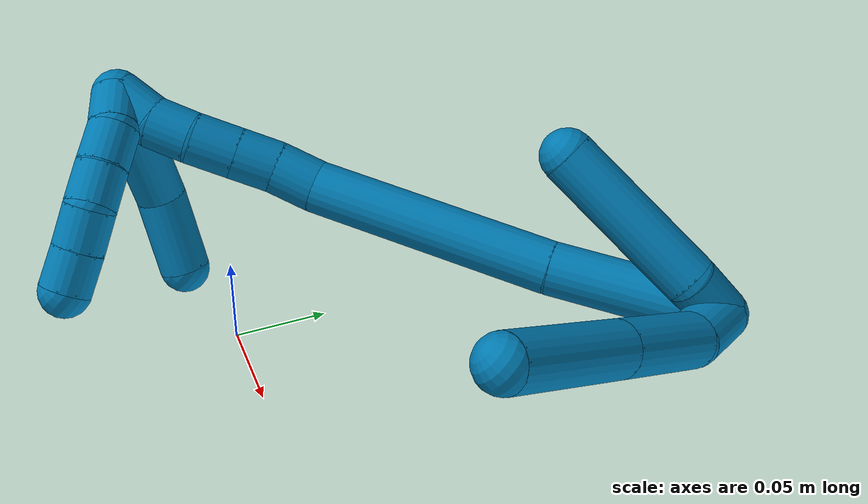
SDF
<sdf version="1.7">
 <world name="default">
  <model name="9">
   <static>0</static>
   <link name="9">
    <collision name="collision-cylinder-e_1_2_8">
     <pose>0.006018 -0.011734 0.006479 1.0663 0.422012 0.251483</pose>
     <geometry><cylinder><radius>0.0125</radius><length>0.029387</length></cylinder></geometry>
     <surface>
      <friction><ode><mu>1.16</mu><mu2>1.16</mu2><slip1>0</slip1><slip2>0</slip2></ode></friction>
      <contact><ode><kp>1e+06</kp><kd>1</kd><max_vel>0</max_vel><min_depth>0.001</min_depth></ode></contact>
     </surface>
    </collision>
    <visual name="visual-cylinder-e_1_2_8">
     <pose>0.006018 -0.011734 0.006479 1.0663 0.422012 0.251483</pose>
     <geometry><cylinder><radius>0.0125</radius><length>0.029387</length></cylinder></geometry>
     <material><ambient>0 0.490196 0.709804 1</ambient></material>
    </visual>
    <collision name="collision-cylinder-e_2_8_9">
     <pose>0.020762 -0.039354 0.031682 0.703551 0.341442 0.126387</pose>
     <geometry><cylinder><radius>0.0125</radius><length>0.052118</length></cylinder></geometry>
     <surface>
      <friction><ode><mu>1.16</mu><mu2>1.16</mu2><slip1>0</slip1><slip2>0</slip2></ode></friction>
      <contact><ode><kp>1e+06</kp><kd>1</kd><max_vel>0</max_vel><min_depth>0.001</min_depth></ode></contact>
     </surface>
    </collision>
    <visual name="visual-cylinder-e_2_8_9">
     <pose>0.020762 -0.039354 0.031682 0.703551 0.341442 0.126387</pose>
     <geometry><cylinder><radius>0.0125</radius><length>0.052118</length></cylinder></geometry>
     <material><ambient>0 0.490196 0.709804 1</ambient></material>
    </visual>
    <collision name="collision-cylinder-e_3_9_6">
     <pose>0.040948 -0.076092 0.075038 0.702528 0.341205 0.126098</pose>
     <geometry><cylinder><radius>0.0125</radius><length>0.068496</length></cylinder></geometry>
     <surface>
      <friction><ode><mu>1.16</mu><mu2>1.16</mu2><slip1>0</slip1><slip2>0</slip2></ode></friction>
      <contact><ode><kp>1e+06</kp><kd>1</kd><max_vel>0</max_vel><min_depth>0.001</min_depth></ode></contact>
     </surface>
    </collision>
    <visual name="visual-cylinder-e_3_9_6">
     <pose>0.040948 -0.076092 0.075038 0.702528 0.341205 0.126098</pose>
     <geometry><cylinder><radius>0.0125</radius><length>0.068496</length></cylinder></geometry>
     <material><ambient>0 0.490196 0.709804 1</ambient></material>
    </visual>
    <collision name="collision-cylinder-e_1_2_10">
     <pose>0.001258 0.000706 0.011604 -0.0608 0.107812 -0.003282</pose>
     <geometry><cylinder><radius>0.0125</radius><length>0.023386</length></cylinder></geometry>
     <surface>
      <friction><ode><mu>1.16</mu><mu2>1.16</mu2><slip1>0</slip1><slip2>0</slip2></ode></friction>
      <contact><ode><kp>1e+06</kp><kd>1</kd><max_vel>0</max_vel><min_depth>0.001</min_depth></ode></contact>
     </surface>
    </collision>
    <visual name="visual-cylinder-e_1_2_10">
     <pose>0.001258 0.000706 0.011604 -0.0608 0.107812 -0.003282</pose>
     <geometry><cylinder><radius>0.0125</radius><length>0.023386</length></cylinder></geometry>
     <material><ambient>0 0.490196 0.709804 1</ambient></material>
    </visual>
    <collision name="collision-cylinder-e_2_10_5">
     <pose>-0.00581 0.008109 0.059994 -0.180065 -0.219108 0.019859</pose>
     <geometry><cylinder><radius>0.0125</radius><length>0.076614</length></cylinder></geometry>
     <surface>
      <friction><ode><mu>1.16</mu><mu2>1.16</mu2><slip1>0</slip1><slip2>0</slip2></ode></friction>
      <contact><ode><kp>1e+06</kp><kd>1</kd><max_vel>0</max_vel><min_depth>0.001</min_depth></ode></contact>
     </surface>
    </collision>
    <visual name="visual-cylinder-e_2_10_5">
     <pose>-0.00581 0.008109 0.059994 -0.180065 -0.219108 0.019859</pose>
     <geometry><cylinder><radius>0.0125</radius><length>0.076614</length></cylinder></geometry>
     <material><ambient>0 0.490196 0.709804 1</ambient></material>
    </visual>
    <collision name="collision-cylinder-e_1_2_11">
     <pose>-0.020768 -0.009926 0.031587 0.304466 -0.560206 -0.08821</pose>
     <geometry><cylinder><radius>0.0125</radius><length>0.078168</length></cylinder></geometry>
     <surface>
      <friction><ode><mu>1.16</mu><mu2>1.16</mu2><slip1>0</slip1><slip2>0</slip2></ode></friction>
      <contact><ode><kp>1e+06</kp><kd>1</kd><max_vel>0</max_vel><min_depth>0.001</min_depth></ode></contact>
     </surface>
    </collision>
    <visual name="visual-cylinder-e_1_2_11">
     <pose>-0.020768 -0.009926 0.031587 0.304466 -0.560206 -0.08821</pose>
     <geometry><cylinder><radius>0.0125</radius><length>0.078168</length></cylinder></geometry>
     <material><ambient>0 0.490196 0.709804 1</ambient></material>
    </visual>
    <collision name="collision-cylinder-e_2_11_12">
     <pose>-0.07289 -0.030449 0.11141 0.216266 -0.565669 -0.063078</pose>
     <geometry><cylinder><radius>0.0125</radius><length>0.116998</length></cylinder></geometry>
     <surface>
      <friction><ode><mu>1.16</mu><mu2>1.16</mu2><slip1>0</slip1><slip2>0</slip2></ode></friction>
      <contact><ode><kp>1e+06</kp><kd>1</kd><max_vel>0</max_vel><min_depth>0.001</min_depth></ode></contact>
     </surface>
    </collision>
    <visual name="visual-cylinder-e_2_11_12">
     <pose>-0.07289 -0.030449 0.11141 0.216266 -0.565669 -0.063078</pose>
     <geometry><cylinder><radius>0.0125</radius><length>0.116998</length></cylinder></geometry>
     <material><ambient>0 0.490196 0.709804 1</ambient></material>
    </visual>
    <collision name="collision-cylinder-e_3_12_13">
     <pose>-0.107846 -0.042618 0.169631 0.156122 -0.342366 -0.027043</pose>
     <geometry><cylinder><radius>0.0125</radius><length>0.021459</length></cylinder></geometry>
     <surface>
      <friction><ode><mu>1.16</mu><mu2>1.16</mu2><slip1>0</slip1><slip2>0</slip2></ode></friction>
      <contact><ode><kp>1e+06</kp><kd>1</kd><max_vel>0</max_vel><min_depth>0.001</min_depth></ode></contact>
     </surface>
    </collision>
    <visual name="visual-cylinder-e_3_12_13">
     <pose>-0.107846 -0.042618 0.169631 0.156122 -0.342366 -0.027043</pose>
     <geometry><cylinder><radius>0.0125</radius><length>0.021459</length></cylinder></geometry>
     <material><ambient>0 0.490196 0.709804 1</ambient></material>
    </visual>
    <collision name="collision-cylinder-e_4_13_14">
     <pose>-0.113915 -0.047106 0.188982 0.301795 -0.246303 -0.037637</pose>
     <geometry><cylinder><radius>0.0125</radius><length>0.020232</length></cylinder></geometry>
     <surface>
      <friction><ode><mu>1.16</mu><mu2>1.16</mu2><slip1>0</slip1><slip2>0</slip2></ode></friction>
      <contact><ode><kp>1e+06</kp><kd>1</kd><max_vel>0</max_vel><min_depth>0.001</min_depth></ode></contact>
     </surface>
    </collision>
    <visual name="visual-cylinder-e_4_13_14">
     <pose>-0.113915 -0.047106 0.188982 0.301795 -0.246303 -0.037637</pose>
     <geometry><cylinder><radius>0.0125</radius><length>0.020232</length></cylinder></geometry>
     <material><ambient>0 0.490196 0.709804 1</ambient></material>
    </visual>
    <collision name="collision-cylinder-e_5_14_15">
     <pose>-0.118973 -0.053158 0.208469 0.30051 -0.239868 -0.036486</pose>
     <geometry><cylinder><radius>0.0125</radius><length>0.021814</length></cylinder></geometry>
     <surface>
      <friction><ode><mu>1.16</mu><mu2>1.16</mu2><slip1>0</slip1><slip2>0</slip2></ode></friction>
      <contact><ode><kp>1e+06</kp><kd>1</kd><max_vel>0</max_vel><min_depth>0.001</min_depth></ode></contact>
     </surface>
    </collision>
    <visual name="visual-cylinder-e_5_14_15">
     <pose>-0.118973 -0.053158 0.208469 0.30051 -0.239868 -0.036486</pose>
     <geometry><cylinder><radius>0.0125</radius><length>0.021814</length></cylinder></geometry>
     <material><ambient>0 0.490196 0.709804 1</ambient></material>
    </visual>
    <collision name="collision-cylinder-e_6_15_16">
     <pose>-0.125205 -0.058256 0.227694 0.212243 -0.372708 -0.040162</pose>
     <geometry><cylinder><radius>0.0125</radius><length>0.020001</length></cylinder></geometry>
     <surface>
      <friction><ode><mu>1.16</mu><mu2>1.16</mu2><slip1>0</slip1><slip2>0</slip2></ode></friction>
      <contact><ode><kp>1e+06</kp><kd>1</kd><max_vel>0</max_vel><min_depth>0.001</min_depth></ode></contact>
     </surface>
    </collision>
    <visual name="visual-cylinder-e_6_15_16">
     <pose>-0.125205 -0.058256 0.227694 0.212243 -0.372708 -0.040162</pose>
     <geometry><cylinder><radius>0.0125</radius><length>0.020001</length></cylinder></geometry>
     <material><ambient>0 0.490196 0.709804 1</ambient></material>
    </visual>
    <collision name="collision-cylinder-e_7_16_1">
     <pose>-0.133055 -0.05936 0.24656 -0.087683 -0.40562 0.018042</pose>
     <geometry><cylinder><radius>0.0125</radius><length>0.021327</length></cylinder></geometry>
     <surface>
      <friction><ode><mu>1.16</mu><mu2>1.16</mu2><slip1>0</slip1><slip2>0</slip2></ode></friction>
      <contact><ode><kp>1e+06</kp><kd>1</kd><max_vel>0</max_vel><min_depth>0.001</min_depth></ode></contact>
     </surface>
    </collision>
    <visual name="visual-cylinder-e_7_16_1">
     <pose>-0.133055 -0.05936 0.24656 -0.087683 -0.40562 0.018042</pose>
     <geometry><cylinder><radius>0.0125</radius><length>0.021327</length></cylinder></geometry>
     <material><ambient>0 0.490196 0.709804 1</ambient></material>
    </visual>
    <collision name="collision-cylinder-e_1_1_17">
     <pose>-0.13268 -0.066537 0.252521 2.01251 0.476055 0.731736</pose>
     <geometry><cylinder><radius>0.0125</radius><length>0.02</length></cylinder></geometry>
     <surface>
      <friction><ode><mu>1.16</mu><mu2>1.16</mu2><slip1>0</slip1><slip2>0</slip2></ode></friction>
      <contact><ode><kp>1e+06</kp><kd>1</kd><max_vel>0</max_vel><min_depth>0.001</min_depth></ode></contact>
     </surface>
    </collision>
    <visual name="visual-cylinder-e_1_1_17">
     <pose>-0.13268 -0.066537 0.252521 2.01251 0.476055 0.731736</pose>
     <geometry><cylinder><radius>0.0125</radius><length>0.02</length></cylinder></geometry>
     <material><ambient>0 0.490196 0.709804 1</ambient></material>
    </visual>
    <collision name="collision-cylinder-e_2_17_18">
     <pose>-0.12651 -0.083953 0.245643 1.88783 0.159424 0.219672</pose>
     <geometry><cylinder><radius>0.0125</radius><length>0.02</length></cylinder></geometry>
     <surface>
      <friction><ode><mu>1.16</mu><mu2>1.16</mu2><slip1>0</slip1><slip2>0</slip2></ode></friction>
      <contact><ode><kp>1e+06</kp><kd>1</kd><max_vel>0</max_vel><min_depth>0.001</min_depth></ode></contact>
     </surface>
    </collision>
    <visual name="visual-cylinder-e_2_17_18">
     <pose>-0.12651 -0.083953 0.245643 1.88783 0.159424 0.219672</pose>
     <geometry><cylinder><radius>0.0125</radius><length>0.02</length></cylinder></geometry>
     <material><ambient>0 0.490196 0.709804 1</ambient></material>
    </visual>
    <collision name="collision-cylinder-e_3_18_19">
     <pose>-0.124036 -0.102691 0.239148 1.92102 0.088704 0.126752</pose>
     <geometry><cylinder><radius>0.0125</radius><length>0.02</length></cylinder></geometry>
     <surface>
      <friction><ode><mu>1.16</mu><mu2>1.16</mu2><slip1>0</slip1><slip2>0</slip2></ode></friction>
      <contact><ode><kp>1e+06</kp><kd>1</kd><max_vel>0</max_vel><min_depth>0.001</min_depth></ode></contact>
     </surface>
    </collision>
    <visual name="visual-cylinder-e_3_18_19">
     <pose>-0.124036 -0.102691 0.239148 1.92102 0.088704 0.126752</pose>
     <geometry><cylinder><radius>0.0125</radius><length>0.02</length></cylinder></geometry>
     <material><ambient>0 0.490196 0.709804 1</ambient></material>
    </visual>
    <collision name="collision-cylinder-e_4_19_20">
     <pose>-0.125394 -0.120972 0.231819 1.9838 -0.226286 -0.344263</pose>
     <geometry><cylinder><radius>0.0125</radius><length>0.02</length></cylinder></geometry>
     <surface>
      <friction><ode><mu>1.16</mu><mu2>1.16</mu2><slip1>0</slip1><slip2>0</slip2></ode></friction>
      <contact><ode><kp>1e+06</kp><kd>1</kd><max_vel>0</max_vel><min_depth>0.001</min_depth></ode></contact>
     </surface>
    </collision>
    <visual name="visual-cylinder-e_4_19_20">
     <pose>-0.125394 -0.120972 0.231819 1.9838 -0.226286 -0.344263</pose>
     <geometry><cylinder><radius>0.0125</radius><length>0.02</length></cylinder></geometry>
     <material><ambient>0 0.490196 0.709804 1</ambient></material>
    </visual>
    <collision name="collision-cylinder-e_5_20_4">
     <pose>-0.129881 -0.138949 0.224296 1.95047 -0.22629 -0.33228</pose>
     <geometry><cylinder><radius>0.0125</radius><length>0.02</length></cylinder></geometry>
     <surface>
      <friction><ode><mu>1.16</mu><mu2>1.16</mu2><slip1>0</slip1><slip2>0</slip2></ode></friction>
      <contact><ode><kp>1e+06</kp><kd>1</kd><max_vel>0</max_vel><min_depth>0.001</min_depth></ode></contact>
     </surface>
    </collision>
    <visual name="visual-cylinder-e_5_20_4">
     <pose>-0.129881 -0.138949 0.224296 1.95047 -0.22629 -0.33228</pose>
     <geometry><cylinder><radius>0.0125</radius><length>0.02</length></cylinder></geometry>
     <material><ambient>0 0.490196 0.709804 1</ambient></material>
    </visual>
    <collision name="collision-cylinder-e_1_1_21">
     <pose>-0.15255 -0.067639 0.231906 2.7835 -0.530386 -1.96598</pose>
     <geometry><cylinder><radius>0.0125</radius><length>0.060441</length></cylinder></geometry>
     <surface>
      <friction><ode><mu>1.16</mu><mu2>1.16</mu2><slip1>0</slip1><slip2>0</slip2></ode></friction>
      <contact><ode><kp>1e+06</kp><kd>1</kd><max_vel>0</max_vel><min_depth>0.001</min_depth></ode></contact>
     </surface>
    </collision>
    <visual name="visual-cylinder-e_1_1_21">
     <pose>-0.15255 -0.067639 0.231906 2.7835 -0.530386 -1.96598</pose>
     <geometry><cylinder><radius>0.0125</radius><length>0.060441</length></cylinder></geometry>
     <material><ambient>0 0.490196 0.709804 1</ambient></material>
    </visual>
    <collision name="collision-cylinder-e_2_21_3">
     <pose>-0.172336 -0.086665 0.190962 2.60238 -0.229443 -0.79013</pose>
     <geometry><cylinder><radius>0.0125</radius><length>0.039559</length></cylinder></geometry>
     <surface>
      <friction><ode><mu>1.16</mu><mu2>1.16</mu2><slip1>0</slip1><slip2>0</slip2></ode></friction>
      <contact><ode><kp>1e+06</kp><kd>1</kd><max_vel>0</max_vel><min_depth>0.001</min_depth></ode></contact>
     </surface>
    </collision>
    <visual name="visual-cylinder-e_2_21_3">
     <pose>-0.172336 -0.086665 0.190962 2.60238 -0.229443 -0.79013</pose>
     <geometry><cylinder><radius>0.0125</radius><length>0.039559</length></cylinder></geometry>
     <material><ambient>0 0.490196 0.709804 1</ambient></material>
    </visual>
    <collision name="collision-sphere-3">
     <pose>-0.176835 -0.096555 0.174434 0 -0 0</pose>
     <geometry><sphere><radius>0.0125</radius></sphere></geometry>
     <surface>
      <friction><ode><mu>1.16</mu><mu2>1.16</mu2><slip1>0</slip1><slip2>0</slip2></ode></friction>
      <contact><ode><kp>1e+06</kp><kd>1</kd><max_vel>0</max_vel><min_depth>0.001</min_depth></ode></contact>
     </surface>
    </collision>
    <visual name="visual-sphere-3">
     <pose>-0.176835 -0.096555 0.174434 0 -0 0</pose>
     <geometry><sphere><radius>0.0125</radius></sphere></geometry>
     <material><ambient>0 0.490196 0.709804 1</ambient></material>
    </visual>
    <collision name="collision-sphere-21">
     <pose>-0.167838 -0.076775 0.207491 0 -0 0</pose>
     <geometry><sphere><radius>0.0125</radius></sphere></geometry>
     <surface>
      <friction><ode><mu>1.16</mu><mu2>1.16</mu2><slip1>0</slip1><slip2>0</slip2></ode></friction>
      <contact><ode><kp>1e+06</kp><kd>1</kd><max_vel>0</max_vel><min_depth>0.001</min_depth></ode></contact>
     </surface>
    </collision>
    <visual name="visual-sphere-21">
     <pose>-0.167838 -0.076775 0.207491 0 -0 0</pose>
     <geometry><sphere><radius>0.0125</radius></sphere></geometry>
     <material><ambient>0 0.490196 0.709804 1</ambient></material>
    </visual>
    <collision name="collision-sphere-4">
     <pose>-0.132125 -0.148 0.220684 0 -0 0</pose>
     <geometry><sphere><radius>0.0125</radius></sphere></geometry>
     <surface>
      <friction><ode><mu>1.16</mu><mu2>1.16</mu2><slip1>0</slip1><slip2>0</slip2></ode></friction>
      <contact><ode><kp>1e+06</kp><kd>1</kd><max_vel>0</max_vel><min_depth>0.001</min_depth></ode></contact>
     </surface>
    </collision>
    <visual name="visual-sphere-4">
     <pose>-0.132125 -0.148 0.220684 0 -0 0</pose>
     <geometry><sphere><radius>0.0125</radius></sphere></geometry>
     <material><ambient>0 0.490196 0.709804 1</ambient></material>
    </visual>
    <collision name="collision-sphere-20">
     <pose>-0.127638 -0.129898 0.227908 0 -0 0</pose>
     <geometry><sphere><radius>0.0125</radius></sphere></geometry>
     <surface>
      <friction><ode><mu>1.16</mu><mu2>1.16</mu2><slip1>0</slip1><slip2>0</slip2></ode></friction>
      <contact><ode><kp>1e+06</kp><kd>1</kd><max_vel>0</max_vel><min_depth>0.001</min_depth></ode></contact>
     </surface>
    </collision>
    <visual name="visual-sphere-20">
     <pose>-0.127638 -0.129898 0.227908 0 -0 0</pose>
     <geometry><sphere><radius>0.0125</radius></sphere></geometry>
     <material><ambient>0 0.490196 0.709804 1</ambient></material>
    </visual>
    <collision name="collision-sphere-5">
     <pose>-0.014136 0.014806 0.09678 0 -0 0</pose>
     <geometry><sphere><radius>0.0125</radius></sphere></geometry>
     <surface>
      <friction><ode><mu>1.16</mu><mu2>1.16</mu2><slip1>0</slip1><slip2>0</slip2></ode></friction>
      <contact><ode><kp>1e+06</kp><kd>1</kd><max_vel>0</max_vel><min_depth>0.001</min_depth></ode></contact>
     </surface>
    </collision>
    <visual name="visual-sphere-5">
     <pose>-0.014136 0.014806 0.09678 0 -0 0</pose>
     <geometry><sphere><radius>0.0125</radius></sphere></geometry>
     <material><ambient>0 0.490196 0.709804 1</ambient></material>
    </visual>
    <collision name="collision-sphere-10">
     <pose>0.002516 0.001413 0.023208 0 -0 0</pose>
     <geometry><sphere><radius>0.0125</radius></sphere></geometry>
     <surface>
      <friction><ode><mu>1.16</mu><mu2>1.16</mu2><slip1>0</slip1><slip2>0</slip2></ode></friction>
      <contact><ode><kp>1e+06</kp><kd>1</kd><max_vel>0</max_vel><min_depth>0.001</min_depth></ode></contact>
     </surface>
    </collision>
    <visual name="visual-sphere-10">
     <pose>0.002516 0.001413 0.023208 0 -0 0</pose>
     <geometry><sphere><radius>0.0125</radius></sphere></geometry>
     <material><ambient>0 0.490196 0.709804 1</ambient></material>
    </visual>
    <collision name="collision-sphere-6">
     <pose>0.052408 -0.096946 0.099669 0 -0 0</pose>
     <geometry><sphere><radius>0.0125</radius></sphere></geometry>
     <surface>
      <friction><ode><mu>1.16</mu><mu2>1.16</mu2><slip1>0</slip1><slip2>0</slip2></ode></friction>
      <contact><ode><kp>1e+06</kp><kd>1</kd><max_vel>0</max_vel><min_depth>0.001</min_depth></ode></contact>
     </surface>
    </collision>
    <visual name="visual-sphere-6">
     <pose>0.052408 -0.096946 0.099669 0 -0 0</pose>
     <geometry><sphere><radius>0.0125</radius></sphere></geometry>
     <material><ambient>0 0.490196 0.709804 1</ambient></material>
    </visual>
    <collision name="collision-sphere-9">
     <pose>0.029488 -0.055239 0.050406 0 -0 0</pose>
     <geometry><sphere><radius>0.0125</radius></sphere></geometry>
     <surface>
      <friction><ode><mu>1.16</mu><mu2>1.16</mu2><slip1>0</slip1><slip2>0</slip2></ode></friction>
      <contact><ode><kp>1e+06</kp><kd>1</kd><max_vel>0</max_vel><min_depth>0.001</min_depth></ode></contact>
     </surface>
    </collision>
    <visual name="visual-sphere-9">
     <pose>0.029488 -0.055239 0.050406 0 -0 0</pose>
     <geometry><sphere><radius>0.0125</radius></sphere></geometry>
     <material><ambient>0 0.490196 0.709804 1</ambient></material>
    </visual>
    <collision name="collision-sphere-2">
     <geometry><sphere><radius>0.0125</radius></sphere></geometry>
     <surface>
      <friction><ode><mu>1.16</mu><mu2>1.16</mu2><slip1>0</slip1><slip2>0</slip2></ode></friction>
      <contact><ode><kp>1e+06</kp><kd>1</kd><max_vel>0</max_vel><min_depth>0.001</min_depth></ode></contact>
     </surface>
    </collision>
    <visual name="visual-sphere-2">
     <geometry><sphere><radius>0.0125</radius></sphere></geometry>
     <material><ambient>0 0.490196 0.709804 1</ambient></material>
    </visual>
    <collision name="collision-sphere-19">
     <pose>-0.12315 -0.112047 0.23573 0 -0 0</pose>
     <geometry><sphere><radius>0.0125</radius></sphere></geometry>
     <surface>
      <friction><ode><mu>1.16</mu><mu2>1.16</mu2><slip1>0</slip1><slip2>0</slip2></ode></friction>
      <contact><ode><kp>1e+06</kp><kd>1</kd><max_vel>0</max_vel><min_depth>0.001</min_depth></ode></contact>
     </surface>
    </collision>
    <visual name="visual-sphere-19">
     <pose>-0.12315 -0.112047 0.23573 0 -0 0</pose>
     <geometry><sphere><radius>0.0125</radius></sphere></geometry>
     <material><ambient>0 0.490196 0.709804 1</ambient></material>
    </visual>
    <collision name="collision-sphere-8">
     <pose>0.012037 -0.023469 0.012958 0 -0 0</pose>
     <geometry><sphere><radius>0.0125</radius></sphere></geometry>
     <surface>
      <friction><ode><mu>1.16</mu><mu2>1.16</mu2><slip1>0</slip1><slip2>0</slip2></ode></friction>
      <contact><ode><kp>1e+06</kp><kd>1</kd><max_vel>0</max_vel><min_depth>0.001</min_depth></ode></contact>
     </surface>
    </collision>
    <visual name="visual-sphere-8">
     <pose>0.012037 -0.023469 0.012958 0 -0 0</pose>
     <geometry><sphere><radius>0.0125</radius></sphere></geometry>
     <material><ambient>0 0.490196 0.709804 1</ambient></material>
    </visual>
    <collision name="collision-sphere-11">
     <pose>-0.041536 -0.019852 0.063174 0 -0 0</pose>
     <geometry><sphere><radius>0.0125</radius></sphere></geometry>
     <surface>
      <friction><ode><mu>1.16</mu><mu2>1.16</mu2><slip1>0</slip1><slip2>0</slip2></ode></friction>
      <contact><ode><kp>1e+06</kp><kd>1</kd><max_vel>0</max_vel><min_depth>0.001</min_depth></ode></contact>
     </surface>
    </collision>
    <visual name="visual-sphere-11">
     <pose>-0.041536 -0.019852 0.063174 0 -0 0</pose>
     <geometry><sphere><radius>0.0125</radius></sphere></geometry>
     <material><ambient>0 0.490196 0.709804 1</ambient></material>
    </visual>
    <collision name="collision-sphere-12">
     <pose>-0.104244 -0.041047 0.159647 0 -0 0</pose>
     <geometry><sphere><radius>0.0125</radius></sphere></geometry>
     <surface>
      <friction><ode><mu>1.16</mu><mu2>1.16</mu2><slip1>0</slip1><slip2>0</slip2></ode></friction>
      <contact><ode><kp>1e+06</kp><kd>1</kd><max_vel>0</max_vel><min_depth>0.001</min_depth></ode></contact>
     </surface>
    </collision>
    <visual name="visual-sphere-12">
     <pose>-0.104244 -0.041047 0.159647 0 -0 0</pose>
     <geometry><sphere><radius>0.0125</radius></sphere></geometry>
     <material><ambient>0 0.490196 0.709804 1</ambient></material>
    </visual>
    <collision name="collision-sphere-13">
     <pose>-0.111448 -0.04419 0.179614 0 -0 0</pose>
     <geometry><sphere><radius>0.0125</radius></sphere></geometry>
     <surface>
      <friction><ode><mu>1.16</mu><mu2>1.16</mu2><slip1>0</slip1><slip2>0</slip2></ode></friction>
      <contact><ode><kp>1e+06</kp><kd>1</kd><max_vel>0</max_vel><min_depth>0.001</min_depth></ode></contact>
     </surface>
    </collision>
    <visual name="visual-sphere-13">
     <pose>-0.111448 -0.04419 0.179614 0 -0 0</pose>
     <geometry><sphere><radius>0.0125</radius></sphere></geometry>
     <material><ambient>0 0.490196 0.709804 1</ambient></material>
    </visual>
    <collision name="collision-sphere-14">
     <pose>-0.116381 -0.050022 0.198349 0 -0 0</pose>
     <geometry><sphere><radius>0.0125</radius></sphere></geometry>
     <surface>
      <friction><ode><mu>1.16</mu><mu2>1.16</mu2><slip1>0</slip1><slip2>0</slip2></ode></friction>
      <contact><ode><kp>1e+06</kp><kd>1</kd><max_vel>0</max_vel><min_depth>0.001</min_depth></ode></contact>
     </surface>
    </collision>
    <visual name="visual-sphere-14">
     <pose>-0.116381 -0.050022 0.198349 0 -0 0</pose>
     <geometry><sphere><radius>0.0125</radius></sphere></geometry>
     <material><ambient>0 0.490196 0.709804 1</ambient></material>
    </visual>
    <collision name="collision-sphere-15">
     <pose>-0.121564 -0.056294 0.218589 0 -0 0</pose>
     <geometry><sphere><radius>0.0125</radius></sphere></geometry>
     <surface>
      <friction><ode><mu>1.16</mu><mu2>1.16</mu2><slip1>0</slip1><slip2>0</slip2></ode></friction>
      <contact><ode><kp>1e+06</kp><kd>1</kd><max_vel>0</max_vel><min_depth>0.001</min_depth></ode></contact>
     </surface>
    </collision>
    <visual name="visual-sphere-15">
     <pose>-0.121564 -0.056294 0.218589 0 -0 0</pose>
     <geometry><sphere><radius>0.0125</radius></sphere></geometry>
     <material><ambient>0 0.490196 0.709804 1</ambient></material>
    </visual>
    <collision name="collision-sphere-16">
     <pose>-0.128847 -0.060218 0.236799 0 -0 0</pose>
     <geometry><sphere><radius>0.0125</radius></sphere></geometry>
     <surface>
      <friction><ode><mu>1.16</mu><mu2>1.16</mu2><slip1>0</slip1><slip2>0</slip2></ode></friction>
      <contact><ode><kp>1e+06</kp><kd>1</kd><max_vel>0</max_vel><min_depth>0.001</min_depth></ode></contact>
     </surface>
    </collision>
    <visual name="visual-sphere-16">
     <pose>-0.128847 -0.060218 0.236799 0 -0 0</pose>
     <geometry><sphere><radius>0.0125</radius></sphere></geometry>
     <material><ambient>0 0.490196 0.709804 1</ambient></material>
    </visual>
    <collision name="collision-sphere-1">
     <pose>-0.137263 -0.058502 0.256321 0 -0 0</pose>
     <geometry><sphere><radius>0.0125</radius></sphere></geometry>
     <surface>
      <friction><ode><mu>1.16</mu><mu2>1.16</mu2><slip1>0</slip1><slip2>0</slip2></ode></friction>
      <contact><ode><kp>1e+06</kp><kd>1</kd><max_vel>0</max_vel><min_depth>0.001</min_depth></ode></contact>
     </surface>
    </collision>
    <visual name="visual-sphere-1">
     <pose>-0.137263 -0.058502 0.256321 0 -0 0</pose>
     <geometry><sphere><radius>0.0125</radius></sphere></geometry>
     <material><ambient>0 0.490196 0.709804 1</ambient></material>
    </visual>
    <collision name="collision-sphere-18">
     <pose>-0.124922 -0.093335 0.242566 0 -0 0</pose>
     <geometry><sphere><radius>0.0125</radius></sphere></geometry>
     <surface>
      <friction><ode><mu>1.16</mu><mu2>1.16</mu2><slip1>0</slip1><slip2>0</slip2></ode></friction>
      <contact><ode><kp>1e+06</kp><kd>1</kd><max_vel>0</max_vel><min_depth>0.001</min_depth></ode></contact>
     </surface>
    </collision>
    <visual name="visual-sphere-18">
     <pose>-0.124922 -0.093335 0.242566 0 -0 0</pose>
     <geometry><sphere><radius>0.0125</radius></sphere></geometry>
     <material><ambient>0 0.490196 0.709804 1</ambient></material>
    </visual>
    <collision name="collision-sphere-17">
     <pose>-0.128097 -0.074572 0.248721 0 -0 0</pose>
     <geometry><sphere><radius>0.0125</radius></sphere></geometry>
     <surface>
      <friction><ode><mu>1.16</mu><mu2>1.16</mu2><slip1>0</slip1><slip2>0</slip2></ode></friction>
      <contact><ode><kp>1e+06</kp><kd>1</kd><max_vel>0</max_vel><min_depth>0.001</min_depth></ode></contact>
     </surface>
    </collision>
    <visual name="visual-sphere-17">
     <pose>-0.128097 -0.074572 0.248721 0 -0 0</pose>
     <geometry><sphere><radius>0.0125</radius></sphere></geometry>
     <material><ambient>0 0.490196 0.709804 1</ambient></material>
    </visual>
    <inertial>
     <pose>-0.063823 -0.046061 0.126155 0 -0 0</pose>
     <mass>0.75</mass>
     <inertia>
      <ixx>0.000214</ixx>
      <ixy>0</ixy>
      <ixz>0</ixz>
      <iyy>0.000222</iyy>
      <iyz>0</iyz>
      <izz>0.000205</izz>
     </inertia>
    </inertial>
   </link>
   <pose>0.166315 0.183499 0.099169 0.585232 -0.679974 0.173743</pose>
  </model>
 </world>
</sdf>
